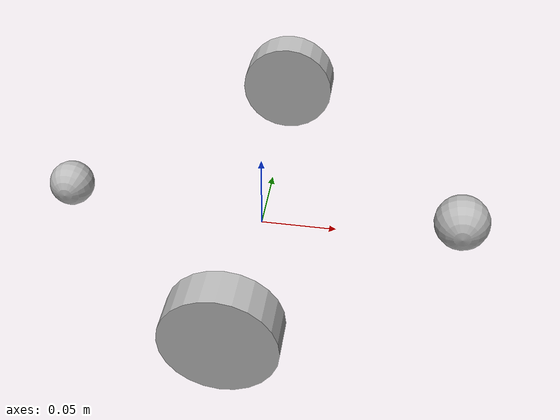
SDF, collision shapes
<?xml version="1.0" ?>
<sdf version="1.4">
  <model name="create">
    <link name="base">
      <inertial>
        <pose>0.001453 -0.000453 0.029787 0 0 0</pose>
        <inertia>
          <ixx>0.058640</ixx>
          <ixy>0.000124</ixy>
          <ixz>0.000615</ixz>
          <iyy>0.058786</iyy>
          <iyz>0.000014</iyz>
          <izz>1.532440</izz>
        </inertia>
        <mass>2.234000</mass>
      </inertial>

      <visual name="base_visual">
        <pose>0 0 0.047800 0 0 0</pose>
        <geometry>
          <mesh>
            <uri>model://create/meshes/create_body.dae</uri>
          </mesh>
        </geometry>
      </visual>

      <collision name="front_wheel_collision">
        <pose>0.130000 0 0.017000 0 1.570700 1.570700</pose>
        <geometry>
          <sphere>
            <radius>0.018000</radius>
          </sphere>
        </geometry>
        <surface>
          <friction>
            <ode>
              <mu>0</mu>
              <mu2>0</mu2>
              <fdir1>0 0 0</fdir1>
              <slip1>0</slip1>
              <slip2>0</slip2>
            </ode>
          </friction>
        </surface>
      </collision>
      <visual name="front_wheel_visual">
        <pose>0.130000 0 0.017000 0 1.570700 1.570700</pose>
        <geometry>
          <sphere>
            <radius>0.009000</radius>
          </sphere>
        </geometry>
      </visual>

      <collision name="rear_wheel_collision">
        <pose>-0.13 0 0.017 0 1.5707 1.5707</pose>
        <geometry>
          <sphere>
            <radius>0.015000</radius>
          </sphere>
        </geometry>
        <surface>
          <friction>
            <ode>
              <mu>0</mu>
              <mu2>0</mu2>
              <fdir1>0 0 0</fdir1>
              <slip1>0</slip1>
              <slip2>0</slip2>
            </ode>
          </friction>
        </surface>
      </collision>
      <visual name="rear_wheel_visual">
        <pose>-0.130000 0 0.017000 0 1.570700 1.570700</pose>
        <geometry>
          <sphere>
            <radius>0.007500</radius>
          </sphere>
        </geometry>
      </visual>

<!-- Sensors -->
		<!-- 15x1 cameras act as 15 colour sensors -->

<sensor name="colour_sensor_1" type="camera">
  <camera>
    <horizontal_fov>1.5707</horizontal_fov>
    <image>
      <width>30</width>
      <height>1</height>
    </image>
    <clip>
      <near>0.1</near>
      <!-- Sensor range -->
      <far>4</far>
    </clip>
  </camera>
 <pose> .15 0 .05 0 0 0.785</pose>
  <plugin name="camera_controller" filename="libgazebo_ros_camera.so">
    <alwaysOn>true</alwaysOn>
    <cameraName>front_colour_sensor_1</cameraName>
    <imageTopicName>image_raw</imageTopicName>
    <cameraInfoTopicName>camera_info</cameraInfoTopicName>
    <frameName>camera_link</frameName>
    <hackBaseline>0.07</hackBaseline>
    <distortionK1>0.0</distortionK1>
    <distortionK2>0.0</distortionK2>
    <distortionK3>0.0</distortionK3>
    <distortionT1>0.0</distortionT1>
    <distortionT2>0.0</distortionT2>
  </plugin>
  <always_on>1</always_on>
  <update_rate>10</update_rate>
 <visualize>false</visualize>
</sensor>

<sensor name="colour_sensor_2" type="camera">
  <camera>
    <horizontal_fov>1.5707</horizontal_fov>
    <image>
      <width>30</width>
      <height>1</height>
    </image>
    <clip>
      <near>0.1</near>
      <!-- Sensor range -->
      <far>4</far>
    </clip>
  </camera>
 <pose> .15 0 .05 0 0 -0.785</pose>
  <plugin name="camera_controller" filename="libgazebo_ros_camera.so">
    <alwaysOn>true</alwaysOn>
    <cameraName>front_colour_sensor_2</cameraName>
    <imageTopicName>image_raw</imageTopicName>
    <cameraInfoTopicName>camera_info</cameraInfoTopicName>
    <frameName>camera_link</frameName>
    <hackBaseline>0.07</hackBaseline>
    <distortionK1>0.0</distortionK1>
    <distortionK2>0.0</distortionK2>
    <distortionK3>0.0</distortionK3>
    <distortionT1>0.0</distortionT1>
    <distortionT2>0.0</distortionT2>
  </plugin>
  <always_on>1</always_on>
  <update_rate>10</update_rate>
 <visualize>false</visualize>
</sensor>
    </link>

    <link name="left_wheel">
      <pose>0 0.130000 0.032000 0 0 0</pose>
      <inertial>
        <inertia>
          <ixx>0.001000</ixx>
          <ixy>0</ixy>
          <ixz>0</ixz>
          <iyy>0.001000</iyy>
          <iyz>0</iyz>
          <izz>0.001000</izz>
        </inertia>
        <mass>0.010000</mass>
      </inertial>
      <collision name="collision">
        <pose>0 0 0 0 1.570700 1.570700</pose>
        <geometry>
          <cylinder>
            <radius>0.033000</radius>
            <length>0.023000</length>
          </cylinder>
        </geometry>
        <surface>
          <friction>
            <ode>
              <mu>10</mu>
              <mu2>10</mu2>
              <fdir1>0 0 0</fdir1>
              <slip1>0</slip1>
              <slip2>0</slip2>
            </ode>
          </friction>
        </surface>
      </collision>
      <visual name="visual">
        <pose>0 0 0 0 1.570700 1.570700</pose>
        <geometry>
          <cylinder>
            <radius>0.033000</radius>
            <length>0.023000</length>
          </cylinder>
        </geometry>
      </visual>
    </link>

    <link name="right_wheel">
      <pose>0 -0.130000 0.032000 0 0 0</pose>
      <inertial>
        <inertia>
          <ixx>0.001000</ixx>
          <ixy>0</ixy>
          <ixz>0</ixz>
          <iyy>0.001000</iyy>
          <iyz>0</iyz>
          <izz>0.001000</izz>
        </inertia>
        <mass>0.010000</mass>
      </inertial>
      <collision name="collision">
        <pose>0 0 0 0 1.570700 1.570700</pose>
        <geometry>
          <cylinder>
            <radius>0.033000</radius>
            <length>0.023000</length>
          </cylinder>
        </geometry>
        <surface>
          <friction>
            <ode>
              <mu>10</mu>
              <mu2>10</mu2>
              <fdir1>0 0 0</fdir1>
              <slip1>0</slip1>
              <slip2>0</slip2>
            </ode>
          </friction>
        </surface>
      </collision>
      <visual name="visual">
        <pose>0 0 0 0 1.570700 1.570700</pose>
        <geometry>
          <cylinder>
            <radius>0.033000</radius>
            <length>0.023000</length>
          </cylinder>
        </geometry>
      </visual>
    </link>

    <joint name="left_wheel" type="revolute">
      <parent>base</parent>
      <child>left_wheel</child>
      <axis>
        <xyz>0 1 0</xyz>
      </axis>
    </joint>

    <joint name="right_wheel" type="revolute">
      <parent>base</parent>
      <child>right_wheel</child>
      <axis>
        <xyz>0 1 0</xyz>
      </axis>
    </joint>

    <plugin name="differential_drive_controller" filename="libgazebo_ros_diff_drive.so">
      <alwaysOn>true</alwaysOn>
      <updateRate>10</updateRate>
      <leftJoint>left_wheel</leftJoint>
      <rightJoint>right_wheel</rightJoint>
      <wheelSeparation>0.5380</wheelSeparation>
      <wheelDiameter>0.2410</wheelDiameter>
      <torque>20</torque>
      <commandTopic>cmd_vel</commandTopic>
      <odometryTopic>odom</odometryTopic>
      <odometryFrame>odom</odometryFrame>
      <robotBaseFrame>base_footprint</robotBaseFrame>
    </plugin>

		<plugin name="p3d_base_controller" filename="libgazebo_ros_p3d.so">
		  <alwaysOn>true</alwaysOn>
		  <updateRate>10</updateRate>
		  <bodyName>base</bodyName>
		  <topicName>base_pose</topicName>
		  <gaussianNoise>0</gaussianNoise>
		  <frameName>map</frameName>
		  <xyzOffsets>0 0 0</xyzOffsets>
		  <rpyOffsets>0 0 0</rpyOffsets>
		  <interface:position name="p3d_base_position"/>
		</plugin>

  </model>

</sdf>
